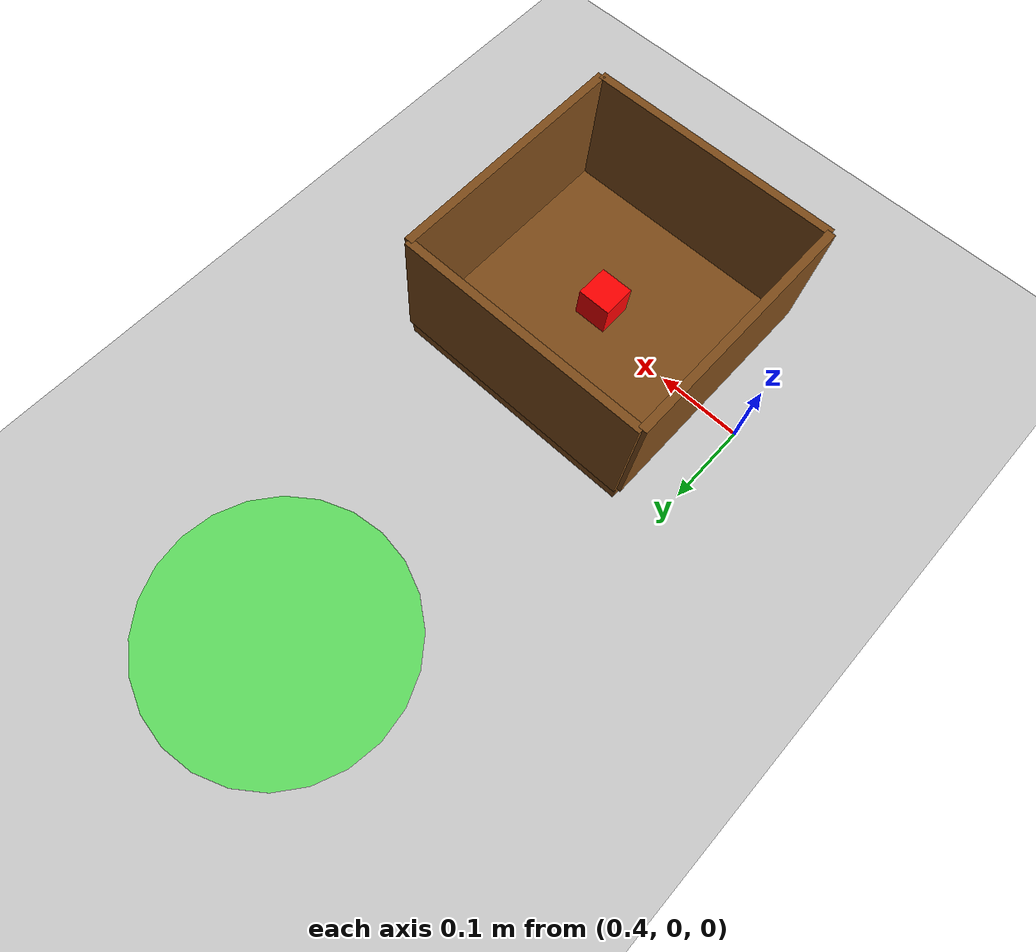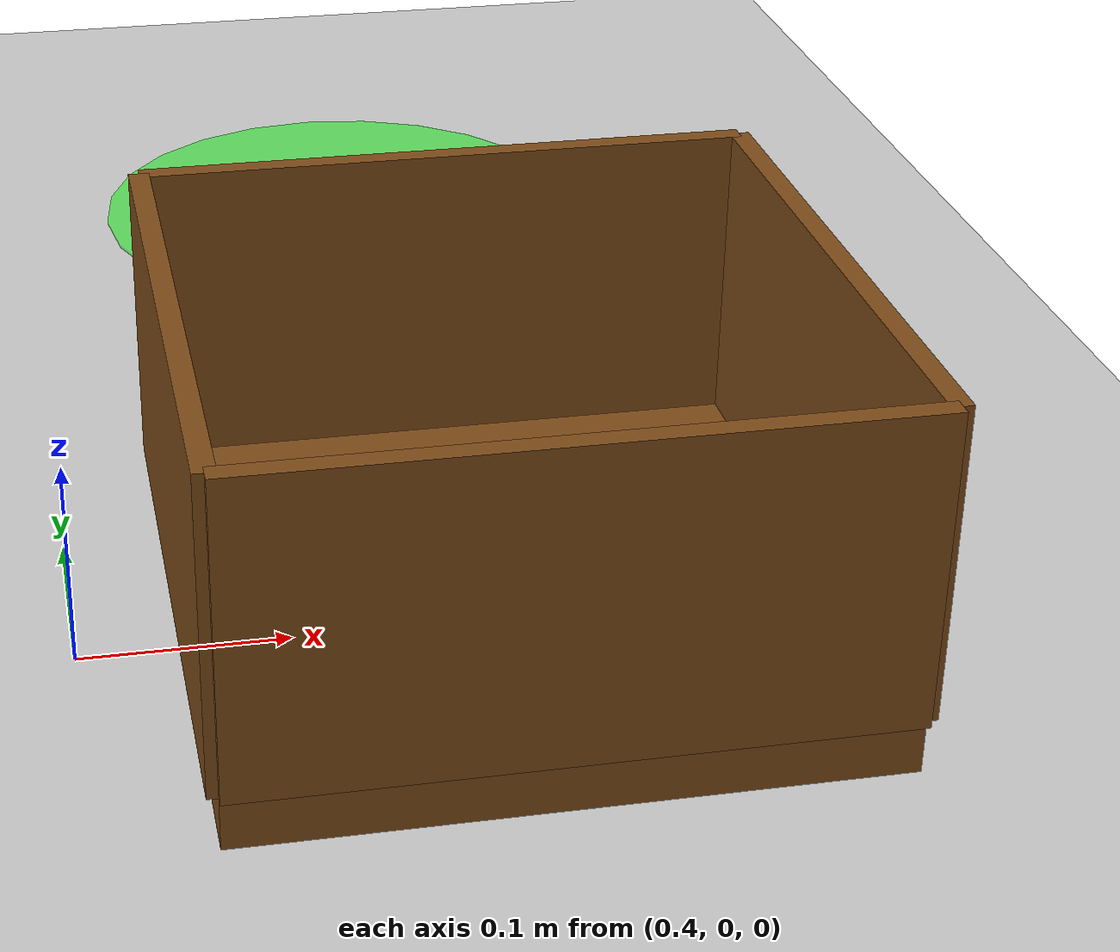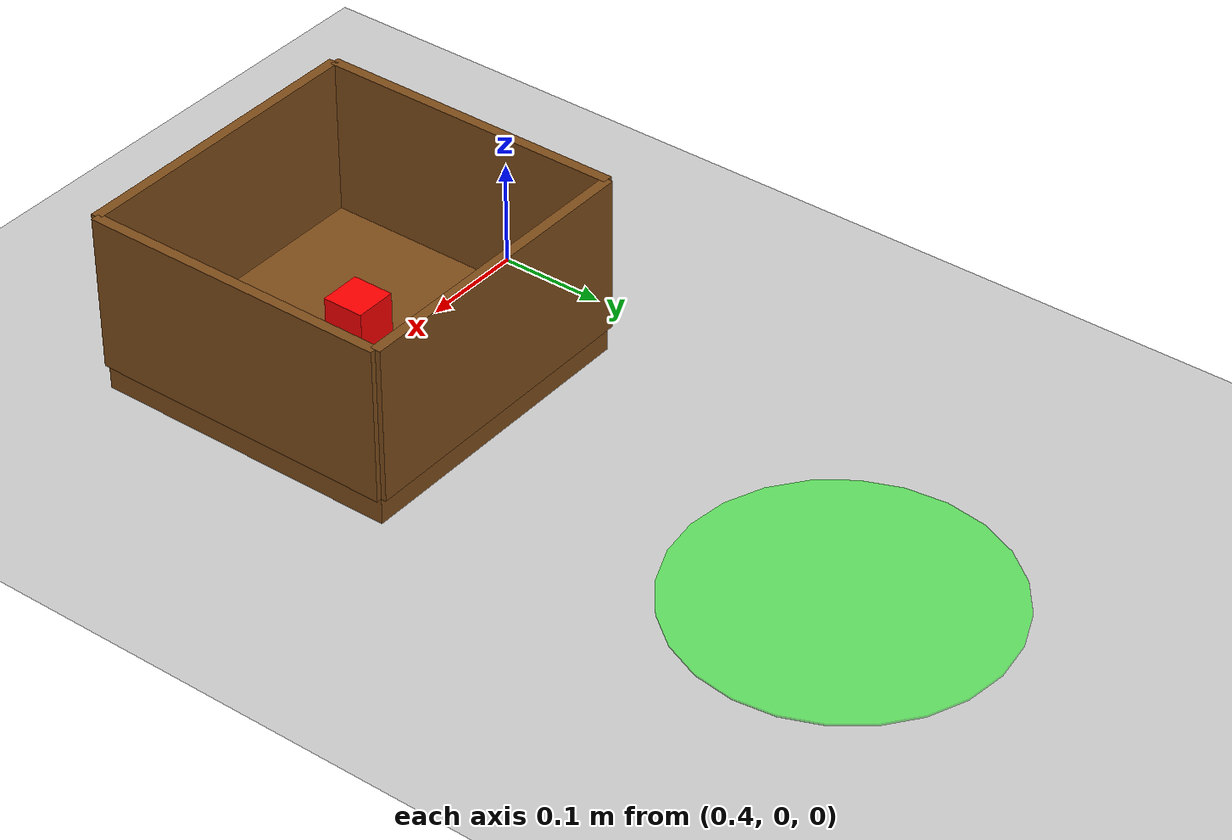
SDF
<?xml version="1.0"?>
<sdf version="1.7">
  <world name="pickplace_world">

    <!-- Physics -->
    <physics type="ode">
      <max_step_size>0.001</max_step_size>
      <real_time_factor>1</real_time_factor>
      <real_time_update_rate>1000</real_time_update_rate>
    </physics>

    <!-- Lighting -->
    <include>
      <uri>
        https://fuel.gazebosim.org/1.0/OpenRobotics/models/Sun
      </uri>
    </include>

    <!-- Ground plane -->
    <include>
      <uri>
        https://fuel.gazebosim.org/1.0/OpenRobotics/models/Ground Plane
      </uri>
    </include>

    <!-- Object Bin (collection zone) -->
    <model name="object_bin">
      <static>true</static>
      <pose>0.6 0 0 0 0 0</pose>

      <!-- Base -->
      <link name="base">
        <visual name="base_visual">
          <geometry>
            <box><size>0.3 0.3 0.05</size></box>
          </geometry>
          <material>
            <ambient>0.5 0.3 0.1 1</ambient>
            <diffuse>0.5 0.3 0.1 1</diffuse>
          </material>
        </visual>
        <collision name="base_collision">
          <geometry>
            <box><size>0.3 0.3 0.05</size></box>
          </geometry>
        </collision>
      </link>

      <!-- Front Wall -->
      <link name="front_wall">
        <pose>0 0.15 0.1 0 0 0</pose>
        <visual name="front_visual">
          <geometry>
            <box><size>0.3 0.01 0.15</size></box>
          </geometry>
          <material>
            <ambient>0.5 0.3 0.1 1</ambient>
            <diffuse>0.5 0.3 0.1 1</diffuse>
          </material>
        </visual>
        <collision name="front_collision">
          <geometry>
            <box><size>0.3 0.01 0.15</size></box>
          </geometry>
        </collision>
      </link>

      <!-- Back Wall -->
      <link name="back_wall">
        <pose>0 -0.15 0.1 0 0 0</pose>
        <visual name="back_visual">
          <geometry>
            <box><size>0.3 0.01 0.15</size></box>
          </geometry>
          <material>
            <ambient>0.5 0.3 0.1 1</ambient>
            <diffuse>0.5 0.3 0.1 1</diffuse>
          </material>
        </visual>
        <collision name="back_collision">
          <geometry>
            <box><size>0.3 0.01 0.15</size></box>
          </geometry>
        </collision>
      </link>

      <!-- Left Wall -->
      <link name="left_wall">
        <pose>-0.15 0 0.1 0 0 0</pose>
        <visual name="left_visual">
          <geometry>
            <box><size>0.01 0.3 0.15</size></box>
          </geometry>
          <material>
            <ambient>0.5 0.3 0.1 1</ambient>
            <diffuse>0.5 0.3 0.1 1</diffuse>
          </material>
        </visual>
        <collision name="left_collision">
          <geometry>
            <box><size>0.01 0.3 0.15</size></box>
          </geometry>
        </collision>
      </link>

      <!-- Right Wall -->
      <link name="right_wall">
        <pose>0.15 0 0.1 0 0 0</pose>
        <visual name="right_visual">
          <geometry>
            <box><size>0.01 0.3 0.15</size></box>
          </geometry>
          <material>
            <ambient>0.5 0.3 0.1 1</ambient>
            <diffuse>0.5 0.3 0.1 1</diffuse>
          </material>
        </visual>
        <collision name="right_collision">
          <geometry>
            <box><size>0.01 0.3 0.15</size></box>
          </geometry>
        </collision>
      </link>

      <!-- Joints to connect walls to base -->
      <joint name="base_to_front" type="fixed">
        <parent>base</parent>
        <child>front_wall</child>
      </joint>
      <joint name="base_to_back" type="fixed">
        <parent>base</parent>
        <child>back_wall</child>
      </joint>
      <joint name="base_to_left" type="fixed">
        <parent>base</parent>
        <child>left_wall</child>
      </joint>
      <joint name="base_to_right" type="fixed">
        <parent>base</parent>
        <child>right_wall</child>
      </joint>
    </model>

    <!-- Target Zone (placement area) -->
    <model name="target_zone">
      <static>true</static>
      <pose>0.6 0.5 0.001 0 0 0</pose>
      <link name="marker">
        <visual name="visual">
          <geometry>
            <cylinder>
              <radius>0.15</radius>
              <length>0.002</length>
            </cylinder>
          </geometry>
          <material>
            <ambient>0 1 0 0.5</ambient>
            <diffuse>0 1 0 0.5</diffuse>
          </material>
        </visual>
      </link>
    </model>

    <!-- Pickable Object (cube in bin) -->
    <model name="pickup_object">
      <pose>0.6 0 0.055 0 0 0</pose>
      <link name="link">
        <inertial>
          <mass>0.05</mass>
          <inertia>
            <ixx>0.00001</ixx>
            <iyy>0.00001</iyy>
            <izz>0.00001</izz>
          </inertia>
        </inertial>
        <visual name="visual">
          <geometry>
            <box><size>0.04 0.04 0.04</size></box>
          </geometry>
          <material>
            <ambient>1 0 0 1</ambient>
            <diffuse>1 0 0 1</diffuse>
          </material>
        </visual>
        <collision name="collision">
          <geometry>
            <box><size>0.04 0.04 0.04</size></box>
          </geometry>
          <surface>
            <friction>
              <ode>
                <mu>1.0</mu>
                <mu2>1.0</mu2>
              </ode>
            </friction>
          </surface>
        </collision>
      </link>
    </model>

  </world>
</sdf>
